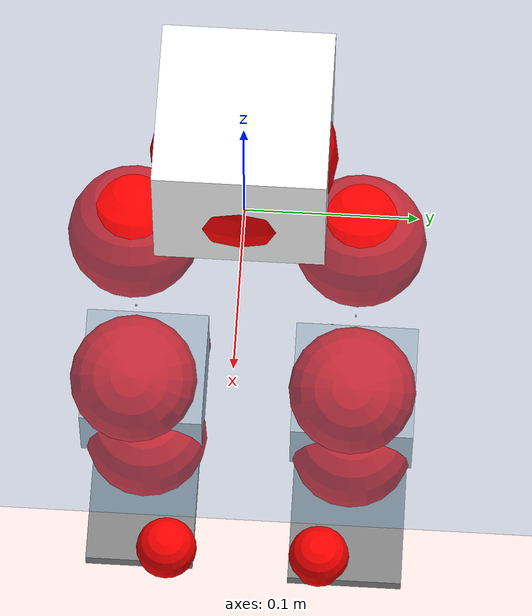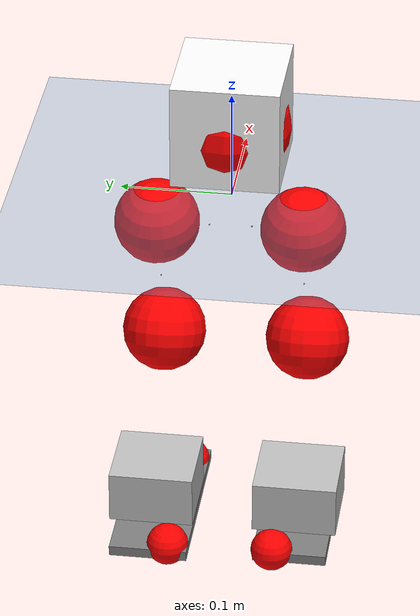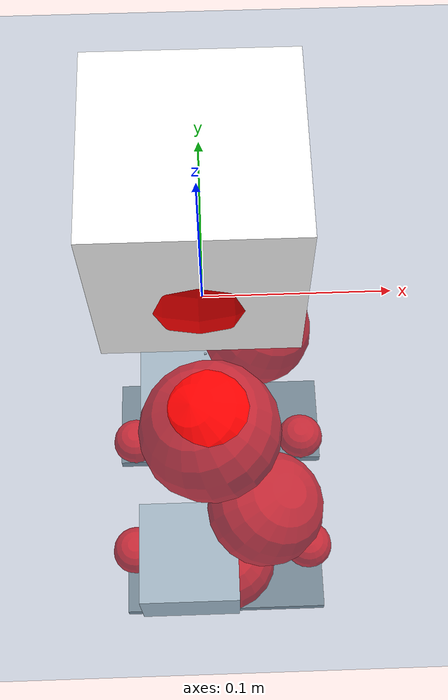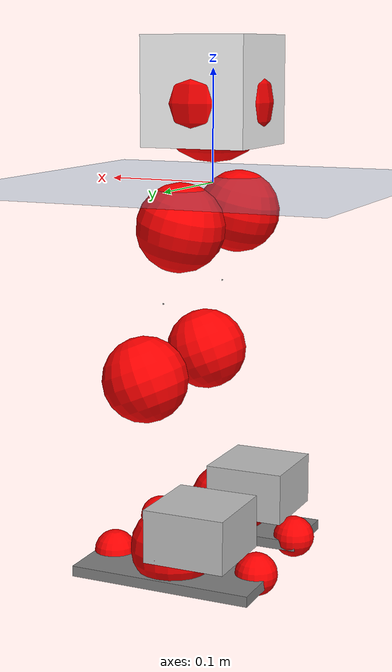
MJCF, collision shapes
<mujoco model="pi_12dof_release_v1">
  <compiler angle="radian" assetdir="assets" balanceinertia="true" inertiafromgeom="false"/>

  <option timestep="0.005" density="1.2" viscosity="2e-05"/>

  <size nkey="1"/>

  <visual>
    <quality shadowsize="8192"/>
    <map shadowclip="0.5"/>
  </visual>

  <default>
    <default class="/">
      <joint armature="0.01" damping="0.01" frictionloss="0.01"/>
      <geom contype="0" conaffinity="0" group="1" solref="-1000 -80"/>
      <site size="0.01 0.005 0.005" group="5"/>
      <general forcelimited="true" biastype="affine" gainprm="20" biasprm="0 -20 -0.5"/>
      <default class="foot">
        <geom size="0.0845 0.036 0.005" type="box" condim="6" group="4" priority="1" friction="0.9 0.2 0.2" solimp="0.015 1 0.005"/>
      </default>
      <default class="reward_collision_sphere">
        <geom group="5" rgba="1 0 0 1"/>
      </default>
    </default>
  </default>

  <asset>
    <texture type="skybox" colorspace="auto" name="//unnamed_texture_0" builtin="gradient" rgb1="0.95 0.95 0.95" rgb2="0.95 0.95 0.95" width="100" height="600"/>
    <texture type="2d" colorspace="auto" name="texplane" builtin="checker" rgb1="0.345 0.575 0.748" rgb2="0.345 0.575 0.748" markrgb="1 1 1" width="512" height="512"/>
    <material name="MatPlane" class="/" texture="texplane" texuniform="true" texrepeat="2 2" specular="0.9"/>
    <mesh name="baselink_1" class="/" file="baselink_1.STL"/>
    <mesh name="r_hip_pitch_link" class="/" file="r_hip_pitch_link.STL"/>
    <mesh name="r_hip_roll_link" class="/" file="r_hip_roll_link.STL"/>
    <mesh name="r_thigh_link" class="/" file="r_thigh_link.STL"/>
    <mesh name="r_calf_link" class="/" file="r_calf_link.STL"/>
    <mesh name="r_ankle_pitch_link" class="/" file="r_ankle_pitch_link.STL"/>
    <mesh name="r_ankle_roll_link" class="/" file="r_ankle_roll_link.STL"/>
    <mesh name="l_hip_pitch_link" class="/" file="l_hip_pitch_link.STL"/>
    <mesh name="l_hip_roll_link" class="/" file="l_hip_roll_link.STL"/>
    <mesh name="l_thigh_link" class="/" file="l_thigh_link.STL"/>
    <mesh name="l_calf_link" class="/" file="l_calf_link.STL"/>
    <mesh name="l_ankle_pitch_link" class="/" file="l_ankle_pitch_link.STL"/>
    <mesh name="l_ankle_roll_link" class="/" file="l_ankle_roll_link.STL"/>
  </asset>

  <worldbody>
    <geom name="floor" class="/" size="100 100 0.125" type="plane" group="0" material="MatPlane"/>
    <light name="toplight_shadow" class="/" pos="0 0 5" dir="0.0990148 0.0990148 -0.990148" type="directional" ambient="0.04 0.04 0.04" diffuse="0.55 0.55 0.55" specular="0.12 0.12 0.12"/>
    <light name="toplight_fill" class="/" pos="0 0 5" dir="0.0990148 0.0990148 -0.990148" type="directional" castshadow="false" ambient="0.04 0.04 0.04" diffuse="0.3 0.3 0.3" specular="0.08 0.08 0.08"/>
    <body name="trunk" pos="-0.000476471 9.69586e-05 0.000186789" quat="1 0.00012896 5.27474e-05 3.95059e-05">
      <inertial pos="0.00177286 -0.000649279 0.0405734" quat="0.69468 0.0112042 0.0108705 0.71915" mass="1.92955" diaginertia="0.012046 0.00375412 0.00432911"/>
      <joint name="//unnamed_joint_0" type="free"/>
      <geom name="//unnamed_geom_1" class="/" type="mesh" density="0" rgba="1 1 1 1" mesh="baselink_1"/>
      <geom name="//unnamed_geom_2" class="/" size="0.0481918 0.0481918 0.0481918" pos="0 0 0.0806197" type="box" rgba="1 1 1 1"/>
      <geom name="//unnamed_geom_3" class="reward_collision_sphere" size="0.0530109" pos="0 0 0.0705422"/>
      <site name="imu" class="/" pos="-0.000465282 -0.000138792 0.000550245" size="0.00963835"/>
      <camera name="track" class="/" pos="0 -1.6806 0" quat="0.707107 0.707107 0 0" mode="trackcom"/>
      <camera name="ego_camera" class="/" pos="0.0782597 0 0.181394" quat="-0.5 -0.5 0.5 0.5"/>
      <body name="r_hip_pitch_link" pos="0.000845395 -0.01799 -0.0323924" quat="0.992192 -7.02936e-05 -0.124722 -1.20364e-05">
        <inertial pos="0.000997867 -0.0463319 -1.7029e-06" quat="-0.0187676 0.705812 -0.0281565 0.707591" mass="0.326554" diaginertia="0.000133488 4.11243e-05 8.57881e-05"/>
        <joint name="r_hip_pitch_joint" class="/" pos="0 0 0" axis="-4.30655e-05 -1 6.59054e-05" range="-1.75443 1.24656" armature="0.00987509" damping="0.0137462" frictionloss="0.00971898"/>
        <geom name="//unnamed_geom_4" class="/" type="mesh" density="0" rgba="0.75294 0.75294 0.75294 1" mesh="r_hip_pitch_link"/>
        <geom name="//unnamed_geom_5" class="/" size="0.000481918 0.000481918 0.000481918" type="box" rgba="0.75294 0.75294 0.75294 1"/>
        <body name="r_hip_roll_link" pos="0.00149018 -0.0460724 -0.000741264" quat="1 -6.43441e-05 0.000160879 0.000152778">
          <inertial pos="-0.00156142 -0.000166479 -0.0619761" quat="0.707064 -0.0824357 -0.0825099 0.697465" mass="0.352948" diaginertia="0.000415373 0.000116456 0.000134631"/>
          <joint name="r_hip_roll_joint" class="/" pos="0 0 0" axis="-0.999993 -0.00276648 -0.00246371" range="-0.122591 0.498837" armature="0.0100459" damping="0.00275771" frictionloss="0.00966398"/>
          <geom name="//unnamed_geom_6" class="/" type="mesh" density="0" rgba="0.75294 0.75294 0.75294 1" mesh="r_hip_roll_link"/>
          <geom name="//unnamed_geom_7" class="/" size="0.000481918 0.000481918 0.000481918" type="box" rgba="0.75294 0.75294 0.75294 1"/>
          <geom name="//unnamed_geom_8" class="reward_collision_sphere" size="0.0385534"/>
          <body name="r_thigh_link" pos="-0.000738001 0.000663637 -0.0689605" quat="1 0.000227691 -3.63087e-05 -0.000178651">
            <inertial pos="0.000597798 0.00151321 -0.0473021" quat="0.736957 0.675939 -0.000611385 -0.000534202" mass="0.100419" diaginertia="0.000155261 3.93937e-05 6.03196e-05"/>
            <joint name="r_thigh_joint" class="/" pos="0 0 0" axis="0.00192475 -0.000414134 -0.999998" range="-0.285124 0.582429" armature="0.00961631" damping="0.00861998" frictionloss="0.00938621"/>
            <geom name="//unnamed_geom_9" class="/" type="mesh" density="0" rgba="0.75294 0.75294 0.75294 1" mesh="r_thigh_link"/>
            <geom name="//unnamed_geom_10" class="/" size="0.000481918 0.000481918 0.000481918" type="box" rgba="0.75294 0.75294 0.75294 1"/>
            <body name="r_calf_link" pos="-0.000252349 -0.00194964 -0.0707489" quat="0.94767 -3.85483e-05 0.319251 -3.27131e-05">
              <inertial pos="0.00053632 -0.00128414 -0.0695049" quat="0.999988 -0.00350469 -0.000126448 0.00328232" mass="0.732888" diaginertia="0.00440506 0.00146678 0.000183669"/>
              <joint name="r_calf_joint" class="/" pos="0 0 0" axis="-0.000666653 -0.99999 0.00446514" range="-1.65229 0.645253" armature="0.00988055" damping="0.00573532" frictionloss="0.00949635"/>
              <geom name="//unnamed_geom_11" class="/" type="mesh" density="0" rgba="0.75294 0.75294 0.75294 1" mesh="r_calf_link"/>
              <geom name="//unnamed_geom_12" class="/" size="0.000481918 0.000481918 0.000481918" type="box" rgba="0.75294 0.75294 0.75294 1"/>
              <geom name="//unnamed_geom_13" class="reward_collision_sphere" size="0.0385534"/>
              <body name="r_ankle_pitch_link" pos="-0.000323034 0.000251371 -0.140833" quat="0.980081 -1.4652e-05 -0.198598 0.000196868">
                <inertial pos="0.00477852 0.0026248 0.000514044" quat="0.00110185 0.709411 -0.000503207 0.704794" mass="0.155409" diaginertia="0.000382991 9.32416e-05 0.000123897"/>
                <joint name="r_ankle_pitch_joint" class="/" pos="0 0 0" axis="-0.00467663 -0.999985 0.00296278" range="-1.3064 0.483622" armature="0.00924362" damping="0.00922904" frictionloss="0.0097737"/>
                <geom name="//unnamed_geom_14" class="/" type="mesh" density="0" rgba="0.75294 0.75294 0.75294 1" mesh="r_ankle_pitch_link"/>
                <geom name="//unnamed_geom_15" class="/" size="0.0375896 0.0385534 0.0240959" type="box" rgba="0.75294 0.75294 0.75294 1"/>
                <body name="r_ankle_roll_link" pos="0.0805391 0.0026023 0.000188742" quat="1 -7.79975e-05 -0.000280797 6.88071e-05">
                  <inertial pos="-0.0242305 0.000144937 -0.0145141" quat="0.559857 0.430318 0.433445 0.559922" mass="0.455689" diaginertia="0.00138469 0.000429799 0.000291163"/>
                  <joint name="r_ankle_roll_joint" class="/" pos="0 0 0" axis="-0.999996 0.0022308 -0.00167618" range="-0.166869 0.156147" armature="0.00966291" damping="0.00719275" frictionloss="0.00986469"/>
                  <geom name="//unnamed_geom_16" class="/" type="mesh" density="0" rgba="0.75294 0.75294 0.75294 1" mesh="r_ankle_roll_link"/>
                  <geom name="//unnamed_geom_17" class="/" type="mesh" rgba="0.75294 0.75294 0.75294 1" mesh="r_ankle_roll_link"/>
                  <geom name="right_foot" class="foot" size="0.0787661 0.0338013 0.00470385" pos="-0.0532166 0 -0.0443408"/>
                  <geom name="//unnamed_geom_19" class="reward_collision_sphere" size="0.0385534" pos="-0.0521731 0 -0.0201549"/>
                  <geom name="//unnamed_geom_20" class="reward_collision_sphere" size="0.0192767" pos="0.0156519 0.016806 -0.0403098"/>
                  <geom name="//unnamed_geom_21" class="reward_collision_sphere" size="0.0192767" pos="-0.125215 0.016806 -0.0403098"/>
                  <site name="right_foot" class="foot" pos="-0.0532166 0 -0.0443408" size="0.00963835"/>
                </body>
              </body>
            </body>
          </body>
        </body>
      </body>
      <body name="l_hip_pitch_link" pos="-0.000311079 0.0200383 -0.0327002" quat="0.992201 -7.95751e-06 -0.124652 1.29493e-05">
        <inertial pos="0.000917603 0.0444696 -0.000315372" quat="-0.037623 0.70356 0.0314571 0.708941" mass="0.349293" diaginertia="0.000160202 4.38089e-05 0.000105567"/>
        <joint name="l_hip_pitch_joint" class="/" pos="0 0 0" axis="-0.000260713 1 0.000674444" range="-1.23996 1.75079" armature="0.00965376" damping="0.00842167" frictionloss="0.0100552"/>
        <geom name="//unnamed_geom_22" class="/" type="mesh" density="0" rgba="0.75294 0.75294 0.75294 1" mesh="l_hip_pitch_link"/>
        <geom name="//unnamed_geom_23" class="/" size="0.000481918 0.000481918 0.000481918" type="box" rgba="0.75294 0.75294 0.75294 1"/>
        <body name="l_hip_roll_link" pos="0.000829127 0.0473964 -0.000503354" quat="1 -5.97639e-06 -9.99622e-05 4.70888e-05">
          <inertial pos="-0.00166095 0.000104124 -0.0619817" quat="0.699245 -0.0752383 -0.077992 0.706621" mass="0.352047" diaginertia="0.000414593 0.000116283 0.000135133"/>
          <joint name="l_hip_roll_joint" class="/" pos="0 0 0" axis="-0.999997 0.00204268 -0.00146319" range="-0.496603 0.105735" armature="0.00938983" damping="0.000841424" frictionloss="0.00998456"/>
          <geom name="//unnamed_geom_24" class="/" type="mesh" density="0" rgba="0.75294 0.75294 0.75294 1" mesh="l_hip_roll_link"/>
          <geom name="//unnamed_geom_25" class="/" size="0.000481918 0.000481918 0.000481918" type="box" rgba="0.75294 0.75294 0.75294 1"/>
          <geom name="//unnamed_geom_26" class="reward_collision_sphere" size="0.0385534"/>
          <body name="l_thigh_link" pos="-0.000160931 -0.000459787 -0.0695965" quat="1 4.41209e-05 0.000175412 9.10938e-05">
            <inertial pos="-8.307e-05 -0.00199762 -0.0480984" quat="0.673096 0.73955 -0.00272017 -0.000529033" mass="0.101802" diaginertia="0.000157511 3.97406e-05 6.09495e-05"/>
            <joint name="l_thigh_joint" class="/" pos="0 0 0" axis="-0.000194353 2.86939e-05 -1" range="-0.602473 0.315019" armature="0.00975978" damping="0.00300753" frictionloss="0.00969617"/>
            <geom name="//unnamed_geom_27" class="/" type="mesh" density="0" rgba="0.75294 0.75294 0.75294 1" mesh="l_thigh_link"/>
            <geom name="//unnamed_geom_28" class="/" size="0.000481918 0.000481918 0.000481918" type="box" rgba="0.75294 0.75294 0.75294 1"/>
            <body name="l_calf_link" pos="0.000274251 0.000117574 -0.0713259" quat="0.94765 4.86207e-05 0.31931 4.54454e-05">
              <inertial pos="0.00111883 0.0023187 -0.0710626" quat="0.99996 0.00379882 0.00020634 0.00815626" mass="0.718649" diaginertia="0.00433621 0.00145958 0.000180339"/>
              <joint name="l_calf_joint" class="/" pos="0 0 0" axis="-0.00401421 0.999989 -0.00245917" stiffness="0.00282197" range="-0.647275 1.65502" armature="0.00961778" damping="0.00678339" frictionloss="0.00967935"/>
              <geom name="//unnamed_geom_29" class="/" type="mesh" density="0" rgba="0.75294 0.75294 0.75294 1" mesh="l_calf_link"/>
              <geom name="//unnamed_geom_30" class="/" size="0.000481918 0.000481918 0.000481918" type="box" rgba="0.75294 0.75294 0.75294 1"/>
              <geom name="//unnamed_geom_31" class="reward_collision_sphere" size="0.0385534"/>
              <body name="l_ankle_pitch_link" pos="0.0010372 0.000623104 -0.14086" quat="0.980113 9.76148e-05 -0.198439 0.000212241">
                <inertial pos="0.00525216 -0.00139996 0.000245595" quat="-0.0022326 0.707154 0.0027659 0.707051" mass="0.160779" diaginertia="0.000388405 9.42437e-05 0.000125956"/>
                <joint name="l_ankle_pitch_joint" class="/" pos="0 0 0" axis="9.07665e-05 0.999999 0.00136927" stiffness="0.000400179" range="-0.489942 1.31932" armature="0.0100215" damping="0.00538996" frictionloss="0.0095625"/>
                <geom name="//unnamed_geom_32" class="/" type="mesh" density="0" rgba="0.75294 0.75294 0.75294 1" mesh="l_ankle_pitch_link"/>
                <geom name="//unnamed_geom_33" class="/" size="0.0375896 0.0385534 0.0240959" type="box" rgba="0.75294 0.75294 0.75294 1"/>
                <body name="l_ankle_roll_link" pos="0.0788752 3.94473e-05 -0.000326824" quat="1 9.44525e-07 6.04853e-06 1.04526e-05">
                  <inertial pos="-0.0262738 0.000309589 -0.0142412" quat="0.558616 0.428886 0.437396 0.559186" mass="0.462263" diaginertia="0.0014046 0.000431796 0.000296545"/>
                  <joint name="l_ankle_roll_joint" class="/" pos="0 0 0" axis="-1 0.000118513 -0.000138261" range="-0.16457 0.169768" armature="0.00926653" damping="0.00770928" frictionloss="0.00949"/>
                  <geom name="//unnamed_geom_34" class="/" type="mesh" density="0" rgba="0.75294 0.75294 0.75294 1" mesh="l_ankle_roll_link"/>
                  <geom name="//unnamed_geom_35" class="/" type="mesh" rgba="0.75294 0.75294 0.75294 1" mesh="l_ankle_roll_link"/>
                  <geom name="left_foot" class="foot" size="0.0847048 0.0358438 0.00476125" pos="-0.0532166 0 -0.0443408"/>
                  <geom name="//unnamed_geom_37" class="reward_collision_sphere" size="0.0385534" pos="-0.0521731 0 -0.0201549"/>
                  <geom name="//unnamed_geom_38" class="reward_collision_sphere" size="0.0192767" pos="0.0156519 -0.016806 -0.0403098"/>
                  <geom name="//unnamed_geom_39" class="reward_collision_sphere" size="0.0192767" pos="-0.125215 -0.016806 -0.0403098"/>
                  <site name="left_foot" class="foot" pos="-0.0532166 0 -0.0443408" size="0.00963835"/>
                </body>
              </body>
            </body>
          </body>
        </body>
      </body>
    </body>
  </worldbody>

  <contact>
    <pair class="/" geom1="floor" geom2="right_foot" name="//unnamed_contact_1"/>
    <pair class="/" geom1="floor" geom2="left_foot" name="//unnamed_contact_0"/>
  </contact>

  <actuator>
    <general name="r_hip_pitch_joint" class="/" joint="r_hip_pitch_joint" forcerange="-19.7354 19.7354" gainprm="19.0184" biasprm="0 -19.0184 -0.475704"/>
    <general name="r_hip_roll_joint" class="/" joint="r_hip_roll_joint" forcerange="-20.3313 20.3313" gainprm="19.0184" biasprm="0 -19.0184 -0.475704"/>
    <general name="r_thigh_joint" class="/" joint="r_thigh_joint" forcerange="-20.0459 20.0459" gainprm="19.0184" biasprm="0 -19.0184 -0.475704"/>
    <general name="r_calf_joint" class="/" joint="r_calf_joint" forcerange="-20.0674 20.0674" gainprm="19.0184" biasprm="0 -19.0184 -0.475704"/>
    <general name="r_ankle_pitch_joint" class="/" joint="r_ankle_pitch_joint" forcerange="-20.3292 20.3292" gainprm="19.0184" biasprm="0 -19.0184 -0.475704"/>
    <general name="r_ankle_roll_joint" class="/" joint="r_ankle_roll_joint" forcerange="-20.383 20.383" gainprm="19.0184" biasprm="0 -19.0184 -0.475704"/>
    <general name="l_hip_pitch_joint" class="/" joint="l_hip_pitch_joint" forcerange="-20.8658 20.8658" gainprm="19.0184" biasprm="0 -19.0184 -0.475704"/>
    <general name="l_hip_roll_joint" class="/" joint="l_hip_roll_joint" forcerange="-20.1859 20.1859" gainprm="19.0184" biasprm="0 -19.0184 -0.475704"/>
    <general name="l_thigh_joint" class="/" joint="l_thigh_joint" forcerange="-20.0546 20.0546" gainprm="19.0184" biasprm="0 -19.0184 -0.475704"/>
    <general name="l_calf_joint" class="/" joint="l_calf_joint" forcerange="-20.3856 20.3856" gainprm="19.0184" biasprm="0 -19.0184 -0.475704"/>
    <general name="l_ankle_pitch_joint" class="/" joint="l_ankle_pitch_joint" forcerange="-19.5724 19.5724" gainprm="19.0184" biasprm="0 -19.0184 -0.475704"/>
    <general name="l_ankle_roll_joint" class="/" joint="l_ankle_roll_joint" forcerange="-19.9023 19.9023" gainprm="19.0184" biasprm="0 -19.0184 -0.475704"/>
  </actuator>

  <sensor>
    <gyro site="imu" name="imu_angular_velocity"/>
    <velocimeter site="imu" name="imu_linear_velocity"/>
    <framelinvel objtype="site" objname="left_foot" name="left_foot_global_linear_velocity"/>
    <framelinvel objtype="site" objname="right_foot" name="right_foot_global_linear_velocity"/>
  </sensor>

  <keyframe>
    <key name="home" qpos="0 0 0.291 1 0 0 0 0.4 0 0 -0.8 0.4 0 -0.4 0 0 0.8 -0.4 0"/>
  </keyframe>
</mujoco>
